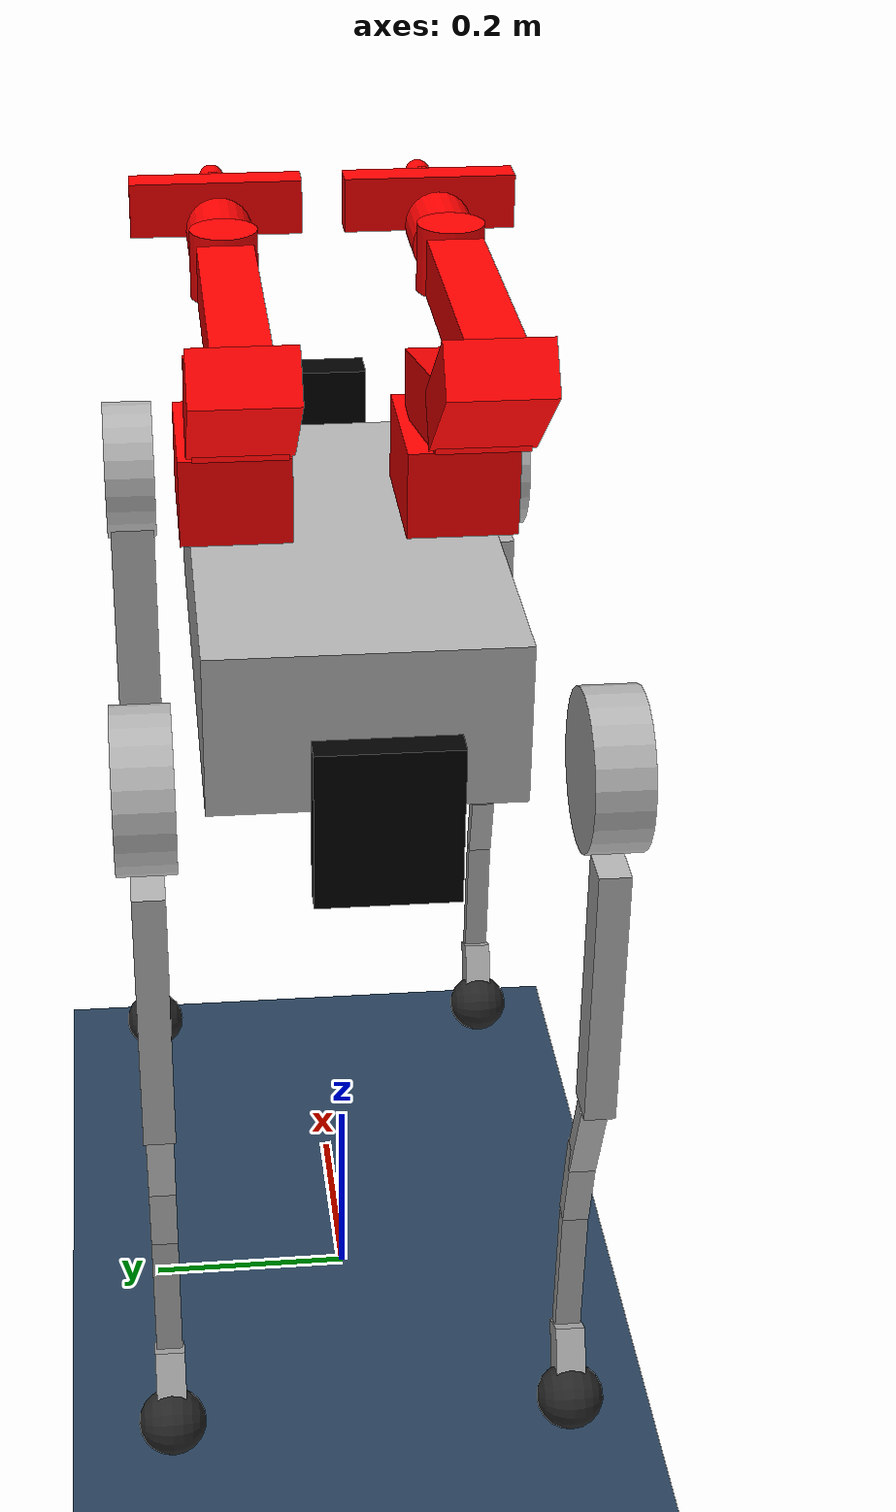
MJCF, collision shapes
<mujoco model="b2_dual_arm flat scene">
  <include file="b2_dual_arm.xml" />

  <statistic center="0 0 0.1" extent="0.8" meansize="0.04" />

  <visual>
    <headlight diffuse="0.6 0.6 0.6" ambient="0.3 0.3 0.3" specular="0 0 0" />
    <rgba haze="0.15 0.25 0.35 1" />
    <global azimuth="-130" elevation="-20" />
  </visual>

  <asset>
    <texture type="skybox" builtin="gradient" rgb1="0.3 0.5 0.7" rgb2="0 0 0" width="512" height="3072" />
    <texture type="2d" name="groundplane" builtin="checker" mark="edge" rgb1="0.2 0.3 0.4" rgb2="0.1 0.2 0.3" markrgb="0.8 0.8 0.8" width="300" height="300" />
    <material name="groundplane" texture="groundplane" texuniform="true" texrepeat="5 5" reflectance="0.2" />
  </asset>

  <worldbody>
    <light pos="0 0 1.5" dir="0 0 -1" directional="true" />
    <geom name="floor" size="0 0 0.05" type="plane" material="groundplane" />
  </worldbody>

  <sensor>
    <gyro site="imu" name="gyro" />
    <velocimeter site="imu" name="local_linvel" />
    <framezaxis objtype="site" objname="imu" name="upvector" />
    <framepos objtype="site" objname="imu" name="global_position" />
    <framelinvel objtype="site" objname="imu" name="global_linvel" />
    <frameangvel objtype="site" objname="imu" name="global_angvel" />

    <framepos objtype="site" objname="FL" name="FL_pos" />
    <framepos objtype="site" objname="FR" name="FR_pos" />
    <framepos objtype="site" objname="RL" name="RL_pos" />
    <framepos objtype="site" objname="RR" name="RR_pos" />

    <framelinvel objtype="site" objname="FL" name="FL_global_linvel" />
    <framelinvel objtype="site" objname="FR" name="FR_global_linvel" />
    <framelinvel objtype="site" objname="RL" name="RL_global_linvel" />
    <framelinvel objtype="site" objname="RR" name="RR_global_linvel" />

    <contact name="FL_foot_contact" geom1="floor" geom2="FL" data="found" num="1" reduce="mindist" />
    <contact name="FR_foot_contact" geom1="floor" geom2="FR" data="found" num="1" reduce="mindist" />
    <contact name="RL_foot_contact" geom1="floor" geom2="RL" data="found" num="1" reduce="mindist" />
    <contact name="RR_foot_contact" geom1="floor" geom2="RR" data="found" num="1" reduce="mindist" />
  </sensor>
</mujoco>

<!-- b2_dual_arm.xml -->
<mujoco model="b2_dual_arm">
  <compiler angle="radian" meshdir="assets" autolimits="true" />
  <default>
    <default class="b2">
      <geom type="mesh" />
      <joint damping="1" armature="0.1" />
      <default class="visual">
        <geom contype="0" conaffinity="0" group="2" />
      </default>
      <default class="collision">
        <geom group="3" mass="0" density="0" />
      </default>
      <site size="0.001" rgba="0.5 0.5 0.5 0.3" group="4" />
    </default>
    <default class="obj_visual">
      <geom group="2" type="mesh" contype="0" conaffinity="0" />
    </default>
    <default class="obj_collision">
      <geom group="3" contype="1" conaffinity="1" />
    </default>
    <default class="airbot_play">
      <joint axis="0 0 1" armature="0.01" damping="1" frictionloss="5" />
      <position inheritrange="1" kp="35" forcerange="-18 18" />
      <default class="joint1">
        <joint range="-3.1416 2.0944" actuatorfrcrange="-24 24" damping="0.2" frictionloss="1" />
      </default>
      <default class="joint2">
        <joint range="-2.9671 0.17453" actuatorfrcrange="-24 24" damping="0.2" frictionloss="1" />
      </default>
      <default class="joint3">
        <joint range="-0.087266 3.1416" actuatorfrcrange="-24 24" damping="0.2" frictionloss="1" />
      </default>
      <default class="joint4">
        <joint range="-3.0107 3.0107" actuatorfrcrange="-8 8" damping="0.1" frictionloss="0.5" />
        <position forcerange="-8 8" />
      </default>
      <default class="joint5">
        <joint range="-1.7628 1.7628" actuatorfrcrange="-8 8" damping="0.1" frictionloss="0.5" />
        <position forcerange="-8 8" />
      </default>
      <default class="joint6">
        <joint range="-3.0107 3.0107" actuatorfrcrange="-8 8" damping="0.1" frictionloss="0.5" />
        <position forcerange="-8 8" />
      </default>
    </default>
  </default>
  <asset>
    <mesh name="base_link" file="base_link.obj" />
    <mesh name="logo_left" file="logo_left.obj" />
    <mesh name="logo_right" file="logo_right.obj" />
    <mesh name="unitree_ladar" file="unitree_ladar.obj" />
    <mesh name="f_dc_link" file="f_dc_link.obj" />
    <mesh name="r_dc_link" file="r_dc_link.obj" />
    <mesh name="fake_imu_link" file="fake_imu_link.STL" />
    <mesh name="fake_head_Link" file="fake_head_Link.STL" />
    <mesh name="fake_tail_link" file="fake_tail_link.STL" />
    <mesh name="FL_hip" file="FL_hip.obj" />
    <mesh name="FL_thigh" file="FL_thigh.obj" />
    <mesh name="FL_thigh_protect" file="FL_thigh_protect.obj" />
    <mesh name="FL_calf" file="FL_calf.obj" />
    <mesh name="FL_foot" file="FL_foot.obj" />
    <mesh name="FR_hip" file="FR_hip.obj" />
    <mesh name="FR_thigh" file="FR_thigh.obj" />
    <mesh name="FR_thigh_protect" file="FR_thigh_protect.obj" />
    <mesh name="FR_calf" file="FR_calf.obj" />
    <mesh name="FR_foot" file="FR_foot.obj" />
    <mesh name="RL_hip" file="RL_hip.obj" />
    <mesh name="RL_thigh" file="RL_thigh.obj" />
    <mesh name="RL_thigh_protect" file="RL_thigh_protect.obj" />
    <mesh name="RL_calf" file="RL_calf.obj" />
    <mesh name="RL_foot" file="RL_foot.obj" />
    <mesh name="RR_hip" file="RR_hip.obj" />
    <mesh name="RR_thigh" file="RR_thigh.obj" />
    <mesh name="RR_thigh_protect" file="RR_thigh_protect.obj" />
    <mesh name="RR_calf" file="RR_calf.obj" />
    <mesh name="RR_foot" file="RR_foot.obj" />
    <mesh name="f_oc_link" file="f_oc_link.obj" />
    <mesh name="r_oc_link" file="r_oc_link.obj" />
    <material name="Paint_Matte_Black" specular="0.5" shininess="0.5" rgba="0.00111266039 0.00111266039 0.00111266039 1.0" />
    <material name="Paint_Metallic_White" specular="0.5" shininess="0.5" rgba="0.928523183 0.928523183 0.928523123 1.0" />
    <mesh name="link1" file="../../../go2_dual_arm/assets/link1.obj" />
    <mesh name="link2_0" file="../../../go2_dual_arm/assets/link2_0.obj" />
    <mesh name="link2_1" file="../../../go2_dual_arm/assets/link2_1.obj" />
    <mesh name="link3_0" file="../../../go2_dual_arm/assets/link3_0.obj" />
    <mesh name="link3_1" file="../../../go2_dual_arm/assets/link3_1.obj" />
    <mesh name="link4" file="../../../go2_dual_arm/assets/link4.obj" />
    <mesh name="link5_0" file="../../../go2_dual_arm/assets/link5_0.obj" />
    <mesh name="link5_1" file="../../../go2_dual_arm/assets/link5_1.obj" />
    <mesh name="link6" file="../../../go2_dual_arm/assets/link6.obj" />
    <mesh name="left" file="../../../go2_dual_arm/assets/left.obj" />
    <mesh name="right" file="../../../go2_dual_arm/assets/right.obj" />
    <mesh name="base_link_base_link" file="../../../go2_dual_arm/assets/new_base_link.STL" />
  </asset>
  <worldbody>
    <body name="base_link" pos="0 0 0.8" childclass="b2">
      <inertial pos="0.0212868 0.0045819 0.0106169" quat="0.00178111 0.675412 -0.000262894 0.737438" mass="40.8426" diaginertia="1.73786 1.66448 0.343734" />
      <joint name="floating_base_joint" type="free" />
      <geom type="mesh" contype="0" conaffinity="0" group="1" density="0" rgba="0.7 0.7 0.7 1" mesh="base_link" />
      <geom size="0.25 0.14 0.075" type="box" rgba="0.7 0.7 0.7 1" class="collision" />
      <geom type="mesh" contype="0" conaffinity="0" group="1" density="0" rgba="1 1 1 1" mesh="logo_left" />
      <geom type="mesh" contype="0" conaffinity="0" group="1" density="0" rgba="1 1 1 1" mesh="logo_right" />
      <geom pos="0.841724 -4.57659e-06 0.130379" quat="0.00244632 3.13845e-06 0.999997 1.29099e-06" type="mesh" contype="0" conaffinity="0" group="1" density="0" rgba="0 0 0 1" mesh="f_dc_link" />
      <geom pos="-0.378319 0.000200109 -0.379902" quat="-1.30076e-06 -0.708662 5.35065e-07 0.705548" type="mesh" contype="0" conaffinity="0" group="1" density="0" rgba="0 0 0 1" mesh="r_dc_link" />
      <geom pos="0 -0.02341 0.04927" type="mesh" contype="0" conaffinity="0" group="1" density="0" rgba="0 0 0 1" mesh="fake_imu_link" />
      <geom type="mesh" contype="0" conaffinity="0" group="1" density="0" rgba="0 0 0 1" mesh="fake_head_Link" />
      <geom size="0.02 0.06 0.07" pos="0.41 0 0.005" type="box" rgba="0 0 0 1" class="collision" />
      <geom type="mesh" contype="0" conaffinity="0" group="1" density="0" rgba="0 0 0 1" mesh="fake_tail_link" />
      <geom size="0.0125 0.06 0.07" pos="-0.405 0 0.005" type="box" rgba="0 0 0 1" class="collision" />
      <geom pos="0.84158 -0.0134347 -0.0134347" quat="-3.89602e-06 1.29867e-06 0.707107 -0.707107" type="mesh" contype="0" conaffinity="0" group="1" density="0" rgba="0 0 0 1" mesh="f_oc_link" />
      <geom pos="-0.00451008 0.0252504 -0.0262476" quat="0.707107 -0.707107 -1.29867e-06 -1.29867e-06" type="mesh" contype="0" conaffinity="0" group="1" density="0" rgba="0 0 0 1" mesh="r_oc_link" />
      <site name="imu" pos="0 -0.02341 0.04927" />
      <body name="FL_hip" pos="0.3285 0.072 0">
        <inertial pos="-0.00829923 -0.00998502 0.000235465" quat="0.525168 0.518964 0.477213 0.476595" mass="2.5294" diaginertia="0.00485541 0.00370618 0.00277182" />
        <joint name="FL_hip_joint" pos="0 0 0" axis="1 0 0" range="-0.87 0.87" />
        <geom type="mesh" contype="0" conaffinity="0" group="1" density="0" rgba="0.7 0.7 0.7 1" mesh="FL_hip" />
        <geom size="0.07 0.025" pos="0 0.12 0" quat="0.707107 0.707107 0 0" type="cylinder" rgba="0.7 0.7 0.7 1" class="collision" />
        <body name="FL_thigh" pos="0 0.11973 0">
          <inertial pos="-0.00418663 -0.0366068 -0.0432737" quat="0.884916 0.0880602 -0.00896728 0.457262" mass="7.4554" diaginertia="0.085057 0.0842843 0.0112538" />
          <joint name="FL_thigh_joint" pos="0 0 0" axis="0 1 0" range="-0.94 4.69" />
          <geom type="mesh" contype="0" conaffinity="0" group="1" density="0" rgba="0.7 0.7 0.7 1" mesh="FL_thigh" />
          <geom size="0.16 0.02225 0.027" pos="-0.025 0 -0.16" quat="0.707388 0 0.706825 0" type="box" rgba="0.7 0.7 0.7 1" class="collision" />
          <geom type="mesh" contype="0" conaffinity="0" group="1" density="0" rgba="0.65 0.68 0.65 1" mesh="FL_thigh_protect" />
          <body name="FL_calf" pos="0 -8.6984e-05 -0.35">
            <inertial pos="0.0096848 1.25758e-05 -0.158987" quat="0.70753 -0.00625821 -0.00634277 0.706627" mass="0.679123" diaginertia="0.0162494 0.0161173 0.000398115" />
            <joint name="FL_calf_joint" pos="0 0 0" axis="0 1 0" range="-2.82 -0.43" />
            <geom type="mesh" contype="0" conaffinity="0" group="1" density="0" rgba="0.7 0.7 0.7 1" mesh="FL_calf" />
            <geom size="0.05 0.01225 0.009" pos="-0.002 0 -0.03" quat="0.825336 0 0.564642 0" type="box" rgba="0.7 0.7 0.7 1" class="collision" />
            <geom size="0.05 0.01225 0.009" pos="0.022 0 -0.1" quat="0.780707 0 0.624897 0" type="box" rgba="0.7 0.7 0.7 1" class="collision" />
            <geom size="0.075 0.01225 0.0075" pos="0.036 0 -0.225" quat="0.721382 0 0.692537 0" type="box" rgba="0.7 0.7 0.7 1" class="collision" />
            <geom size="0.025 0.014 0.0175" pos="0.023 0 -0.31" quat="0.540302 0 0.841471 0" type="box" rgba="0.7 0.7 0.7 1" class="collision" />
            <geom pos="0 8.6986e-05 0" type="mesh" contype="0" conaffinity="0" group="1" density="0" rgba="0.15 0.15 0.15 1" mesh="FL_foot" friction="0.4 0.005 0.0001" />
            <geom name="FL" size="0.032" pos="0 8.6986e-05 -0.35" quat="0.707388 0.706825 0 0" type="sphere" rgba="0.15 0.15 0.15 1" class="collision" friction="0.4 0.005 0.0001" />
            <site name="FL" pos="0 8.6986e-05 -0.35" size="0.01" type="sphere" rgba="0 1 0 1" />
          </body>
        </body>
      </body>
      <body name="FR_hip" pos="0.3285 -0.072 0">
        <inertial pos="-0.00829923 0.00998502 0.000235465" quat="0.476595 0.477213 0.518964 0.525168" mass="2.5294" diaginertia="0.00485541 0.00370618 0.00277182" />
        <joint name="FR_hip_joint" pos="0 0 0" axis="1 0 0" range="-0.87 0.87" />
        <geom type="mesh" contype="0" conaffinity="0" group="1" density="0" rgba="0.7 0.7 0.7 1" mesh="FR_hip" />
        <geom size="0.07 0.025" pos="0 -0.12 0" quat="0.707107 0.707107 0 0" type="cylinder" rgba="0.7 0.7 0.7 1" class="collision" />
        <body name="FR_thigh" pos="0 -0.11973 0">
          <inertial pos="-0.00418663 0.0366068 -0.0432737" quat="0.457262 -0.00896728 0.0880602 0.884916" mass="7.4554" diaginertia="0.085057 0.0842843 0.0112538" />
          <joint name="FR_thigh_joint" pos="0 0 0" axis="0 1 0" range="-0.94 4.69" />
          <geom type="mesh" contype="0" conaffinity="0" group="1" density="0" rgba="0.7 0.7 0.7 1" mesh="FR_thigh" />
          <geom size="0.125 0.014 0.02" pos="-0.03 0 -0.2" quat="0.707388 0 0.706825 0" type="box" rgba="0.7 0.7 0.7 1" class="collision" />
          <geom type="mesh" contype="0" conaffinity="0" group="1" density="0" rgba="0.65 0.68 0.65 1" mesh="FR_thigh_protect" />
          <body name="FR_calf" pos="0 8.6986e-05 -0.35">
            <inertial pos="0.0096848 0 -0.158987" quat="0.707079 -0.00630052 -0.00630052 0.707079" mass="0.679123" diaginertia="0.0162494 0.0161173 0.000398115" />
            <joint name="FR_calf_joint" pos="0 0 0" axis="0 1 0" range="-2.82 -0.43" />
            <geom type="mesh" contype="0" conaffinity="0" group="1" density="0" rgba="0.7 0.7 0.7 1" mesh="FR_calf" />
            <geom size="0.05 0.01225 0.009" pos="-0.002 0 -0.03" quat="0.825336 0 0.564642 0" type="box" rgba="0.7 0.7 0.7 1" class="collision" />
            <geom size="0.05 0.01225 0.009" pos="0.022 0 -0.1" quat="0.780707 0 0.624897 0" type="box" rgba="0.7 0.7 0.7 1" class="collision" />
            <geom size="0.075 0.01225 0.0075" pos="0.036 0 -0.225" quat="0.721382 0 0.692537 0" type="box" rgba="0.7 0.7 0.7 1" class="collision" />
            <geom size="0.025 0.014 0.0175" pos="0.023 0 -0.31" quat="0.540302 0 0.841471 0" type="box" rgba="0.7 0.7 0.7 1" class="collision" />
            <geom type="mesh" contype="0" conaffinity="0" group="1" density="0" rgba="0.15 0.15 0.15 1" mesh="FR_foot" friction="0.4 0.005 0.0001" />
            <geom name="FR" size="0.032" pos="0 8.6986e-05 -0.35" quat="0.707388 0.706825 0 0" type="sphere" rgba="0.15 0.15 0.15 1" class="collision" friction="0.4 0.005 0.0001" />
            <site name="FR" pos="0 8.6986e-05 -0.35" size="0.01" type="sphere" rgba="0 1 0 1" />
          </body>
        </body>
      </body>
      <body name="RL_hip" pos="-0.3285 0.072 0">
        <inertial pos="0.00829923 -0.00998502 0.000235465" quat="0.477213 0.476595 0.525168 0.518964" mass="2.5294" diaginertia="0.00485541 0.00370618 0.00277182" />
        <joint name="RL_hip_joint" pos="0 0 0" axis="1 0 0" range="-0.87 0.87" />
        <geom type="mesh" contype="0" conaffinity="0" group="1" density="0" rgba="0.7 0.7 0.7 1" mesh="RL_hip" />
        <geom size="0.07 0.025" pos="0 0.12 0" quat="0.707107 0.707107 0 0" type="cylinder" rgba="0.7 0.7 0.7 1" class="collision" />
        <body name="RL_thigh" pos="0 0.11973 0">
          <inertial pos="-0.00418663 -0.0366068 -0.0432737" quat="0.884916 0.0880602 -0.00896728 0.457262" mass="7.4554" diaginertia="0.085057 0.0842843 0.0112538" />
          <joint name="RL_thigh_joint" pos="0 0 0" axis="0 1 0" range="-0.94 4.69" />
          <geom type="mesh" contype="0" conaffinity="0" group="1" density="0" rgba="0.7 0.7 0.7 1" mesh="RL_thigh" />
          <geom size="0.125 0.014 0.02" pos="-0.03 0 -0.2" quat="0.707388 0 0.706825 0" type="box" rgba="0.7 0.7 0.7 1" class="collision" />
          <geom type="mesh" contype="0" conaffinity="0" group="1" density="0" rgba="0.65 0.68 0.65 1" mesh="RL_thigh_protect" />
          <body name="RL_calf" pos="0 -8.6984e-05 -0.35">
            <inertial pos="0.0096848 1.25758e-05 -0.158987" quat="0.70753 -0.00625821 -0.00634277 0.706627" mass="0.679123" diaginertia="0.0162494 0.0161173 0.000398115" />
            <joint name="RL_calf_joint" pos="0 0 0" axis="0 1 0" range="-2.82 -0.43" />
            <geom type="mesh" contype="0" conaffinity="0" group="1" density="0" rgba="0.7 0.7 0.7 1" mesh="RL_calf" />
            <geom size="0.05 0.01225 0.009" pos="-0.002 0 -0.03" quat="0.825336 0 0.564642 0" type="box" rgba="0.7 0.7 0.7 1" class="collision" />
            <geom size="0.05 0.01225 0.009" pos="0.022 0 -0.1" quat="0.780707 0 0.624897 0" type="box" rgba="0.7 0.7 0.7 1" class="collision" />
            <geom size="0.075 0.01225 0.0075" pos="0.036 0 -0.225" quat="0.721382 0 0.692537 0" type="box" rgba="0.7 0.7 0.7 1" class="collision" />
            <geom size="0.025 0.014 0.0175" pos="0.023 0 -0.31" quat="0.540302 0 0.841471 0" type="box" rgba="0.7 0.7 0.7 1" class="collision" />
            <geom pos="0 8.6986e-05 0" type="mesh" contype="0" conaffinity="0" group="1" density="0" rgba="0.15 0.15 0.15 1" mesh="RL_foot" friction="0.4 0.005 0.0001" />
            <geom name="RL" size="0.032" pos="0 8.6986e-05 -0.35" quat="0.707388 0.706825 0 0" type="sphere" rgba="0.15 0.15 0.15 1" class="collision" friction="0.4 0.005 0.0001" />
            <site name="RL" pos="0 8.6986e-05 -0.35" size="0.01" type="sphere" rgba="0 1 0 1" />
          </body>
        </body>
      </body>
      <body name="RR_hip" pos="-0.3285 -0.072 0">
        <inertial pos="0.00829923 -0.00825992 0.000235465" quat="0.524846 0.53164 0.469132 0.470967" mass="2.5294" diaginertia="0.0048658 0.00378576 0.00284106" />
        <joint name="RR_hip_joint" pos="0 0 0" axis="1 0 0" range="-0.87 0.87" />
        <geom type="mesh" contype="0" conaffinity="0" group="1" density="0" rgba="0.7 0.7 0.7 1" mesh="RR_hip" />
        <geom size="0.07 0.025" pos="0 -0.12 0" quat="0.707107 0.707107 0 0" type="cylinder" rgba="0.7 0.7 0.7 1" class="collision" />
        <body name="RR_thigh" pos="0 -0.11973 0">
          <inertial pos="-0.00418663 0.0366068 -0.0432737" quat="0.457262 -0.00896728 0.0880602 0.884916" mass="7.4554" diaginertia="0.085057 0.0842843 0.0112538" />
          <joint name="RR_thigh_joint" pos="0 0 0" axis="0 1 0" range="-0.94 4.69" />
          <geom type="mesh" contype="0" conaffinity="0" group="1" density="0" rgba="0.7 0.7 0.7 1" mesh="RR_thigh" />
          <geom size="0.125 0.014 0.02" pos="-0.03 0 -0.2" quat="0.707388 0 0.706825 0" type="box" rgba="0.7 0.7 0.7 1" class="collision" />
          <geom type="mesh" contype="0" conaffinity="0" group="1" density="0" rgba="0.65 0.68 0.65 1" mesh="RR_thigh_protect" />
          <body name="RR_calf" pos="0 8.6986e-05 -0.35">
            <inertial pos="0.0096848 -1.25756e-05 -0.158987" quat="0.706627 -0.00634277 -0.00625821 0.70753" mass="0.679123" diaginertia="0.0162494 0.0161173 0.000398115" />
            <joint name="RR_calf_joint" pos="0 0 0" axis="0 1 0" range="-2.82 -0.43" />
            <geom type="mesh" contype="0" conaffinity="0" group="1" density="0" rgba="0.7 0.7 0.7 1" mesh="RR_calf" />
            <geom size="0.05 0.01225 0.009" pos="-0.002 0 -0.03" quat="0.825336 0 0.564642 0" type="box" rgba="0.7 0.7 0.7 1" class="collision" />
            <geom size="0.05 0.01225 0.009" pos="0.022 0 -0.1" quat="0.780707 0 0.624897 0" type="box" rgba="0.7 0.7 0.7 1" class="collision" />
            <geom size="0.075 0.01225 0.0075" pos="0.036 0 -0.225" quat="0.721382 0 0.692537 0" type="box" rgba="0.7 0.7 0.7 1" class="collision" />
            <geom size="0.025 0.014 0.0175" pos="0.023 0 -0.31" quat="0.540302 0 0.841471 0" type="box" rgba="0.7 0.7 0.7 1" class="collision" />
            <geom pos="0 -8.6984e-05 0" type="mesh" contype="0" conaffinity="0" group="1" density="0" rgba="0.15 0.15 0.15 1" mesh="RR_foot" friction="0.4 0.005 0.0001" />
            <geom name="RR" size="0.032" pos="0 8.6986e-05 -0.35" quat="0.707388 0.706825 0 0" type="sphere" rgba="0.15 0.15 0.15 1" class="collision" friction="0.4 0.005 0.0001" />
            <site name="RR" pos="0 8.6986e-05 -0.35" size="0.01" type="sphere" rgba="0 1 0 1" />
          </body>
        </body>
      </body>
      <body name="left_arm_base_on_go2" pos="0.0045 0.10 0.0945">
        <body name="left_arm_base" childclass="airbot_play">
          <site name="left_armbasepoint" pos="0 0 0" euler="0 0 0" size="0.01" type="sphere" rgba="1 0 0 1" />
          <inertial pos="-0.0262913514073823 -0.0151414731978384 0.0260741549397302" mass="0.735520547128483" diaginertia="0.000798907222818606 0.000995609340418481 0.001483737681037" />
          <geom name="left_base_link_collision" type="box" pos="-0.015 0 0.045" size="0.07 0.05 0.04" rgba="1 0 0 0.5" class="obj_collision" />
          <geom name="left_base_link_visual" type="mesh" mesh="base_link_base_link" material="Paint_Matte_Black" class="obj_visual" />
          <site name="left_touch_site_base" pos="-0.015 0 0.045" size="0.001" type="sphere" group="3" />
          <body name="left_link1" pos="0 0 0.1172">
            <inertial pos="7.9126e-05 -0.002527 -0.0041359" quat="0.696716 0.716558 0.0238919 -0.0236876" mass="0.54639" diaginertia="0.000346294 0.000325437 0.000286269" />
            <joint name="left_joint1" class="joint1" />
            <geom name="left_link1_visual" type="mesh" mesh="link1" material="Paint_Matte_Black" class="obj_visual" />
            <site name="left_touch_site_link1" pos="0 0 0" size="0.001" type="sphere" group="3" />
            <body name="left_link2" quat="0.135866 0.135867 -0.69393 0.693932">
              <inertial pos="0.22493 0.0047721 0.008023" quat="-0.210875 0.632473 -0.273056 0.693506" mass="0.64621" diaginertia="0.00516535 0.00505042 0.000418626" />
              <joint name="left_joint2" class="joint2" />
              <geom name="left_link2_collision1" type="box" pos="0.08 0.015 0" euler="0 0 0.15" size="0.11 0.03 0.04" rgba="1 0 0 0.5" class="obj_collision" />
              <geom name="left_link2_collision2" type="box" pos="0.235 0.015 0" euler="0 0 -0.3" size="0.065 0.025 0.045" rgba="1 0 0 0.5" class="obj_collision" />
              <geom name="left_link2_0_visual" type="mesh" mesh="link2_0" material="Paint_Matte_Black" class="obj_visual" />
              <geom name="left_link2_1_visual" type="mesh" mesh="link2_1" material="Paint_Metallic_White" class="obj_visual" />
              <site name="left_touch_site_link2" pos="0.15 0 0" size="0.001" type="sphere" group="3" />
              <body name="left_link3" pos="0.27009 0 0" quat="0.192144 0 0 -0.981367">
                <inertial pos="0.16813 -5.5576e-05 0.0031184" quat="0.511278 0.488423 0.489191 0.510617" mass="0.26829" diaginertia="0.0031527 0.0030951 0.000239403" />
                <joint name="left_joint3" class="joint3" />
                <geom name="left_link3_collision" type="box" pos="0.13 0 0" size="0.13 0.025 0.025" rgba="1 0 0 0.5" class="obj_collision" />
                <geom name="left_link3_0_visual" type="mesh" mesh="link3_0" material="Paint_Matte_Black" class="obj_visual" />
                <geom name="left_link3_1_visual" type="mesh" mesh="link3_1" material="Paint_Metallic_White" class="obj_visual" />
                <site name="left_touch_site_link3" pos="0.13 0 0" size="0.001" type="sphere" group="3" />
                <body name="left_link4" pos="0.29015 0 0" quat="-2.59734e-06 0.707105 2.59735e-06 0.707108">
                  <inertial pos="5.2436e-06 0.00040412 -0.03228" quat="0.999969 -0.000174762 -0.00792041 -6.98144e-05" mass="0.34876" diaginertia="0.000423574 0.000412 0.000126826" />
                  <joint name="left_joint4" class="joint4" />
                  <geom name="left_link4_visual" type="mesh" mesh="link4" material="Paint_Matte_Black" class="obj_visual" />
                  <geom name="left_link4_collision" type="cylinder" pos="0 0 0" euler="1.5708 0 0" size="0.03 0.03" rgba="1 0 0 0.5" class="obj_collision" />
                  <site name="left_touch_site_link4" pos="0 0 0" size="0.001" type="sphere" group="3" />
                  <body name="left_link5" quat="0.707105 0.707108 0 0">
                    <inertial pos="8.3328e-06 0.026148 0.002525" quat="0.531568 0.4663 0.4663 0.531568" mass="0.36132" diaginertia="0.0004677 0.000432922 0.000178178" />
                    <joint name="left_joint5" class="joint5" />
                    <geom name="left_link5_0_visual" type="mesh" mesh="link5_0" material="Paint_Matte_Black" class="obj_visual" />
                    <geom name="left_link5_1_visual" type="mesh" mesh="link5_1" material="Paint_Metallic_White" class="obj_visual" />
                    <geom name="left_link5_collision" type="cylinder" pos="0 0.06 0" euler="1.5708 0 0" size="0.03 0.03" rgba="1 0 0 0.5" class="obj_collision" />
                    <site name="left_touch_site_link5" pos="0 0.06 0" size="0.001" type="sphere" group="3" />
                    <body name="left_link6" pos="0 0.23645 0" quat="0.499998 -0.5 0.5 0.500002">
                      <body pos="-0.105 0 -0.12" euler="3.1416 0 1.5708">
                        <camera name="left_eye_arm" mode="fixed" euler="-0.5236 0 0" fovy="72.5376526571421" />
                      </body>
                      <inertial pos="-0.0047053 7.3857e-05 -0.12293" mass="0.53855" diaginertia="5e-05 5e-05 3.85e-05" />
                      <joint name="left_joint6" class="joint6" />
                      <geom name="left_link6_collision" type="box" pos="0 0 -0.07" size="0.025 0.08 0.015" rgba="1 0 0 0.5" class="obj_collision" />
                      <geom name="left_link6_visual" type="mesh" mesh="link6" material="Paint_Matte_Black" class="obj_visual" />
                      <site name="left_endpoint" pos="0 0 0.015" euler="0 -1.5708 0" size="0.01" type="sphere" rgba="0 1 0 1" />
                      <site name="left_touch_site_link6" pos="0 0 -0.07" size="0.001" type="sphere" group="3" />
                      <body name="left_eef_connect_base_link">
                        <geom name="left_eef_collision" type="sphere" size=".012" pos="0 0 0.015" rgba="1 0 0 0.5" class="obj_collision" />
                        <site name="left_touch_site_eef" pos="0 0 0.015" size="0.001" type="sphere" group="3" />
                        <body name="left_g2_base_link">
                          <geom name="left_g2_base_link_collision" type="box" pos="0 0 -0.07" size="0.025 0.08 0.015" rgba="1 0 0 0.5" class="obj_collision" />
                          <site name="left_touch_site_g2base" pos="0 0 -0.07" size="0.001" type="sphere" group="3" />
                          <body name="left_g2_left_link">
                            <inertial pos="-0.048742 0.0096369 0.00044322" quat="0.757393 0.0415116 0.0313705 0.650883" mass="0.0626" diaginertia="2.79281e-05 1.90181e-05 1.21737e-05" />
                            <geom name="left_g2_left_link_visual" type="mesh" mesh="right" material="Paint_Matte_Black" class="obj_visual" />
                            <geom name="left_g2_left_finger_pad" type="box" size=".00525 .002 .02" pos="0 0.002 0.005" rgba="1 0 0 0.5" class="obj_collision" />
                            <geom name="left_g2_left_finger_collision" type="box" size=".015 .002 .018" pos="0 0.002 -0.035" rgba="1 0 0 0.5" class="obj_collision" />
                          </body>
                          <body name="left_g2_right_link">
                            <inertial pos="-0.049039 -0.0096764 0.00038868" quat="0.650491 0.0296695 0.0398251 0.757889" mass="0.061803" diaginertia="2.74809e-05 1.88104e-05 1.19127e-05" />
                            <geom name="left_g2_right_link_visual" type="mesh" mesh="left" material="Paint_Matte_Black" class="obj_visual" />
                            <geom name="left_g2_right_finger_pad" type="box" size=".00525 .002 .02" pos="0 -0.002 0.005" rgba="1 0 0 0.5" class="obj_collision" />
                            <geom name="left_g2_right_finger_collision" type="box" size=".015 .002 .018" pos="0 -0.002 -0.035" rgba="1 0 0 0.5" class="obj_collision" />
                          </body>
                        </body>
                      </body>
                    </body>
                  </body>
                </body>
              </body>
            </body>
          </body>
        </body>
      </body>
      <body name="right_arm_base_on_go2" pos="0.0045 -0.10 0.0945">
        <body name="right_arm_base" childclass="airbot_play">
          <site name="right_armbasepoint" pos="0 0 0" euler="0 0 0" size="0.01" type="sphere" rgba="1 0 0 1" />
          <inertial pos="-0.0262913514073823 -0.0151414731978384 0.0260741549397302" mass="0.735520547128483" diaginertia="0.000798907222818606 0.000995609340418481 0.001483737681037" />
          <geom name="right_base_link_collision" type="box" pos="-0.015 0 0.045" size="0.07 0.05 0.04" rgba="1 0 0 0.5" class="obj_collision" />
          <geom name="right_base_link_visual" type="mesh" mesh="base_link_base_link" material="Paint_Matte_Black" class="obj_visual" />
          <site name="right_touch_site_base" pos="-0.015 0 0.045" size="0.001" type="sphere" group="3" />
          <body name="right_link1" pos="0 0 0.1172">
            <inertial pos="7.9126e-05 -0.002527 -0.0041359" quat="0.696716 0.716558 0.0238919 -0.0236876" mass="0.54639" diaginertia="0.000346294 0.000325437 0.000286269" />
            <joint name="right_joint1" class="joint1" />
            <geom name="right_link1_visual" type="mesh" mesh="link1" material="Paint_Matte_Black" class="obj_visual" />
            <site name="right_touch_site_link1" pos="0 0 0" size="0.001" type="sphere" group="3" />
            <body name="right_link2" quat="0.135866 0.135867 -0.69393 0.693932">
              <inertial pos="0.22493 0.0047721 0.008023" quat="-0.210875 0.632473 -0.273056 0.693506" mass="0.64621" diaginertia="0.00516535 0.00505042 0.000418626" />
              <joint name="right_joint2" class="joint2" />
              <geom name="right_link2_collision1" type="box" pos="0.08 0.015 0" euler="0 0 0.15" size="0.11 0.03 0.04" rgba="1 0 0 0.5" class="obj_collision" />
              <geom name="right_link2_collision2" type="box" pos="0.235 0.015 0" euler="0 0 -0.3" size="0.065 0.025 0.045" rgba="1 0 0 0.5" class="obj_collision" />
              <geom name="right_link2_0_visual" type="mesh" mesh="link2_0" material="Paint_Matte_Black" class="obj_visual" />
              <geom name="right_link2_1_visual" type="mesh" mesh="link2_1" material="Paint_Metallic_White" class="obj_visual" />
              <site name="right_touch_site_link2" pos="0.15 0 0" size="0.001" type="sphere" group="3" />
              <body name="right_link3" pos="0.27009 0 0" quat="0.192144 0 0 -0.981367">
                <inertial pos="0.16813 -5.5576e-05 0.0031184" quat="0.511278 0.488423 0.489191 0.510617" mass="0.26829" diaginertia="0.0031527 0.0030951 0.000239403" />
                <joint name="right_joint3" class="joint3" />
                <geom name="right_link3_collision" type="box" pos="0.13 0 0" size="0.13 0.025 0.025" rgba="1 0 0 0.5" class="obj_collision" />
                <geom name="right_link3_0_visual" type="mesh" mesh="link3_0" material="Paint_Matte_Black" class="obj_visual" />
                <geom name="right_link3_1_visual" type="mesh" mesh="link3_1" material="Paint_Metallic_White" class="obj_visual" />
                <site name="right_touch_site_link3" pos="0.13 0 0" size="0.001" type="sphere" group="3" />
                <body name="right_link4" pos="0.29015 0 0" quat="-2.59734e-06 0.707105 2.59735e-06 0.707108">
                  <inertial pos="5.2436e-06 0.00040412 -0.03228" quat="0.999969 -0.000174762 -0.00792041 -6.98144e-05" mass="0.34876" diaginertia="0.000423574 0.000412 0.000126826" />
                  <joint name="right_joint4" class="joint4" />
                  <geom name="right_link4_visual" type="mesh" mesh="link4" material="Paint_Matte_Black" class="obj_visual" />
                  <geom name="right_link4_collision" type="cylinder" pos="0 0 0" euler="1.5708 0 0" size="0.03 0.03" rgba="1 0 0 0.5" class="obj_collision" />
                  <site name="right_touch_site_link4" pos="0 0 0" size="0.001" type="sphere" group="3" />
                  <body name="right_link5" quat="0.707105 0.707108 0 0">
                    <inertial pos="8.3328e-06 0.026148 0.002525" quat="0.531568 0.4663 0.4663 0.531568" mass="0.36132" diaginertia="0.0004677 0.000432922 0.000178178" />
                    <joint name="right_joint5" class="joint5" />
                    <geom name="right_link5_0_visual" type="mesh" mesh="link5_0" material="Paint_Matte_Black" class="obj_visual" />
                    <geom name="right_link5_1_visual" type="mesh" mesh="link5_1" material="Paint_Metallic_White" class="obj_visual" />
                    <geom name="right_link5_collision" type="cylinder" pos="0 0.06 0" euler="1.5708 0 0" size="0.03 0.03" rgba="1 0 0 0.5" class="obj_collision" />
                    <site name="right_touch_site_link5" pos="0 0.06 0" size="0.001" type="sphere" group="3" />
                    <body name="right_link6" pos="0 0.23645 0" quat="0.499998 -0.5 0.5 0.500002">
                      <body pos="-0.105 0 -0.12" euler="3.1416 0 1.5708">
                        <camera name="right_eye_arm" mode="fixed" euler="-0.5236 0 0" fovy="72.5376526571421" />
                      </body>
                      <inertial pos="-0.0047053 7.3857e-05 -0.12293" mass="0.53855" diaginertia="5e-05 5e-05 3.85e-05" />
                      <joint name="right_joint6" class="joint6" />
                      <geom name="right_link6_collision" type="box" pos="0 0 -0.07" size="0.025 0.08 0.015" rgba="1 0 0 0.5" class="obj_collision" />
                      <geom name="right_link6_visual" type="mesh" mesh="link6" material="Paint_Matte_Black" class="obj_visual" />
                      <site name="right_endpoint" pos="0 0 0.015" euler="0 -1.5708 0" size="0.01" type="sphere" rgba="0 1 0 1" />
                      <site name="right_touch_site_link6" pos="0 0 -0.07" size="0.001" type="sphere" group="3" />
                      <body name="right_eef_connect_base_link">
                        <geom name="right_eef_collision" type="sphere" size=".012" pos="0 0 0.015" rgba="1 0 0 0.5" class="obj_collision" />
                        <site name="right_touch_site_eef" pos="0 0 0.015" size="0.001" type="sphere" group="3" />
                        <body name="right_g2_base_link">
                          <geom name="right_g2_base_link_collision" type="box" pos="0 0 -0.07" size="0.025 0.08 0.015" rgba="1 0 0 0.5" class="obj_collision" />
                          <site name="right_touch_site_g2base" pos="0 0 -0.07" size="0.001" type="sphere" group="3" />
                          <body name="right_g2_left_link">
                            <inertial pos="-0.048742 0.0096369 0.00044322" quat="0.757393 0.0415116 0.0313705 0.650883" mass="0.0626" diaginertia="2.79281e-05 1.90181e-05 1.21737e-05" />
                            <geom name="right_g2_left_link_visual" type="mesh" mesh="right" material="Paint_Matte_Black" class="obj_visual" />
                            <geom name="right_g2_left_finger_pad" type="box" size=".00525 .002 .02" pos="0 0.002 0.005" rgba="1 0 0 0.5" class="obj_collision" />
                            <geom name="right_g2_left_finger_collision" type="box" size=".015 .002 .018" pos="0 0.002 -0.035" rgba="1 0 0 0.5" class="obj_collision" />
                          </body>
                          <body name="right_g2_right_link">
                            <inertial pos="-0.049039 -0.0096764 0.00038868" quat="0.650491 0.0296695 0.0398251 0.757889" mass="0.061803" diaginertia="2.74809e-05 1.88104e-05 1.19127e-05" />
                            <geom name="right_g2_right_link_visual" type="mesh" mesh="left" material="Paint_Matte_Black" class="obj_visual" />
                            <geom name="right_g2_right_finger_pad" type="box" size=".00525 .002 .02" pos="0 -0.002 0.005" rgba="1 0 0 0.5" class="obj_collision" />
                            <geom name="right_g2_right_finger_collision" type="box" size=".015 .002 .018" pos="0 -0.002 -0.035" rgba="1 0 0 0.5" class="obj_collision" />
                          </body>
                        </body>
                      </body>
                    </body>
                  </body>
                </body>
              </body>
            </body>
          </body>
        </body>
      </body>
    </body>
  </worldbody>
  <contact>
    <exclude body1="left_arm_base" body2="left_link2" />
    <exclude body1="right_arm_base" body2="right_link2" />
    <exclude body1="left_arm_base" body2="left_link1" />
    <exclude body1="right_arm_base" body2="right_link1" />
    <exclude body1="left_link1" body2="left_link2" />
    <exclude body1="right_link1" body2="right_link2" />
    <exclude body1="left_link2" body2="left_link3" />
    <exclude body1="right_link2" body2="right_link3" />
    <exclude body1="left_link3" body2="left_link4" />
    <exclude body1="right_link3" body2="right_link4" />
    <exclude body1="left_link4" body2="left_link5" />
    <exclude body1="right_link4" body2="right_link5" />
    <exclude body1="left_link5" body2="left_link6" />
    <exclude body1="right_link5" body2="right_link6" />
    <exclude body1="left_link6" body2="left_eef_connect_base_link" />
    <exclude body1="right_link6" body2="right_eef_connect_base_link" />
    <exclude body1="left_eef_connect_base_link" body2="left_g2_base_link" />
    <exclude body1="right_eef_connect_base_link" body2="right_g2_base_link" />
    <exclude body1="left_g2_base_link" body2="left_g2_left_link" />
    <exclude body1="right_g2_base_link" body2="right_g2_left_link" />
    <exclude body1="left_g2_base_link" body2="left_g2_right_link" />
    <exclude body1="right_g2_base_link" body2="right_g2_right_link" />
  </contact>
  <actuator>
    <position class="b2" name="FL_hip" joint="FL_hip_joint" ctrllimited="true" ctrlrange="-0.87 0.87" />
    <position class="b2" name="FL_thigh" joint="FL_thigh_joint" ctrllimited="true" ctrlrange="-0.94 4.69" />
    <position class="b2" name="FL_calf" joint="FL_calf_joint" ctrllimited="true" ctrlrange="-2.82 -0.43" />
    <position class="b2" name="FR_hip" joint="FR_hip_joint" ctrllimited="true" ctrlrange="-0.87 0.87" />
    <position class="b2" name="FR_thigh" joint="FR_thigh_joint" ctrllimited="true" ctrlrange="-0.94 4.69" />
    <position class="b2" name="FR_calf" joint="FR_calf_joint" ctrllimited="true" ctrlrange="-2.82 -0.43" />
    <position class="b2" name="RL_hip" joint="RL_hip_joint" ctrllimited="true" ctrlrange="-0.87 0.87" />
    <position class="b2" name="RL_thigh" joint="RL_thigh_joint" ctrllimited="true" ctrlrange="-0.94 4.69" />
    <position class="b2" name="RL_calf" joint="RL_calf_joint" ctrllimited="true" ctrlrange="-2.82 -0.43" />
    <position class="b2" name="RR_hip" joint="RR_hip_joint" ctrllimited="true" ctrlrange="-0.87 0.87" />
    <position class="b2" name="RR_thigh" joint="RR_thigh_joint" ctrllimited="true" ctrlrange="-0.94 4.69" />
    <position class="b2" name="RR_calf" joint="RR_calf_joint" ctrllimited="true" ctrlrange="-2.82 -0.43" />
    <position joint="left_joint1" class="joint1" forcerange="-24 24" forcelimited="true" ctrllimited="true" name="left_joint1_control" />
    <position joint="left_joint2" class="joint2" forcerange="-24 24" forcelimited="true" ctrllimited="true" name="left_joint2_control" />
    <position joint="left_joint3" class="joint3" forcerange="-24 24" forcelimited="true" ctrllimited="true" name="left_joint3_control" />
    <position joint="left_joint4" class="joint4" forcerange="-8 8" forcelimited="true" ctrllimited="true" name="left_joint4_control" />
    <position joint="left_joint5" class="joint5" forcerange="-8 8" forcelimited="true" ctrllimited="true" name="left_joint5_control" />
    <position joint="left_joint6" class="joint6" forcerange="-8 8" forcelimited="true" ctrllimited="true" name="left_joint6_control" />
    <position joint="right_joint1" class="joint1" forcerange="-24 24" forcelimited="true" ctrllimited="true" name="right_joint1_control" />
    <position joint="right_joint2" class="joint2" forcerange="-24 24" forcelimited="true" ctrllimited="true" name="right_joint2_control" />
    <position joint="right_joint3" class="joint3" forcerange="-24 24" forcelimited="true" ctrllimited="true" name="right_joint3_control" />
    <position joint="right_joint4" class="joint4" forcerange="-8 8" forcelimited="true" ctrllimited="true" name="right_joint4_control" />
    <position joint="right_joint5" class="joint5" forcerange="-8 8" forcelimited="true" ctrllimited="true" name="right_joint5_control" />
    <position joint="right_joint6" class="joint6" forcerange="-8 8" forcelimited="true" ctrllimited="true" name="right_joint6_control" />
  </actuator>
  <sensor>
    <jointpos name="FR_hip_pos" joint="FR_hip_joint" />
    <jointpos name="FR_thigh_pos" joint="FR_thigh_joint" />
    <jointpos name="FR_calf_pos" joint="FR_calf_joint" />
    <jointpos name="FL_hip_pos" joint="FL_hip_joint" />
    <jointpos name="FL_thigh_pos" joint="FL_thigh_joint" />
    <jointpos name="FL_calf_pos" joint="FL_calf_joint" />
    <jointpos name="RR_hip_pos" joint="RR_hip_joint" />
    <jointpos name="RR_thigh_pos" joint="RR_thigh_joint" />
    <jointpos name="RR_calf_pos" joint="RR_calf_joint" />
    <jointpos name="RL_hip_pos" joint="RL_hip_joint" />
    <jointpos name="RL_thigh_pos" joint="RL_thigh_joint" />
    <jointpos name="RL_calf_pos" joint="RL_calf_joint" />
    <jointvel name="FR_hip_vel" joint="FR_hip_joint" />
    <jointvel name="FR_thigh_vel" joint="FR_thigh_joint" />
    <jointvel name="FR_calf_vel" joint="FR_calf_joint" />
    <jointvel name="FL_hip_vel" joint="FL_hip_joint" />
    <jointvel name="FL_thigh_vel" joint="FL_thigh_joint" />
    <jointvel name="FL_calf_vel" joint="FL_calf_joint" />
    <jointvel name="RR_hip_vel" joint="RR_hip_joint" />
    <jointvel name="RR_thigh_vel" joint="RR_thigh_joint" />
    <jointvel name="RR_calf_vel" joint="RR_calf_joint" />
    <jointvel name="RL_hip_vel" joint="RL_hip_joint" />
    <jointvel name="RL_thigh_vel" joint="RL_thigh_joint" />
    <jointvel name="RL_calf_vel" joint="RL_calf_joint" />
    <jointactuatorfrc name="FR_hip_torque" joint="FR_hip_joint" noise="0.01" />
    <jointactuatorfrc name="FR_thigh_torque" joint="FR_thigh_joint" noise="0.01" />
    <jointactuatorfrc name="FR_calf_torque" joint="FR_calf_joint" noise="0.01" />
    <jointactuatorfrc name="FL_hip_torque" joint="FL_hip_joint" noise="0.01" />
    <jointactuatorfrc name="FL_thigh_torque" joint="FL_thigh_joint" noise="0.01" />
    <jointactuatorfrc name="FL_calf_torque" joint="FL_calf_joint" noise="0.01" />
    <jointactuatorfrc name="RR_hip_torque" joint="RR_hip_joint" noise="0.01" />
    <jointactuatorfrc name="RR_thigh_torque" joint="RR_thigh_joint" noise="0.01" />
    <jointactuatorfrc name="RR_calf_torque" joint="RR_calf_joint" noise="0.01" />
    <jointactuatorfrc name="RL_hip_torque" joint="RL_hip_joint" noise="0.01" />
    <jointactuatorfrc name="RL_thigh_torque" joint="RL_thigh_joint" noise="0.01" />
    <jointactuatorfrc name="RL_calf_torque" joint="RL_calf_joint" noise="0.01" />
    <framequat name="imu_quat" objtype="site" objname="imu" />
    <gyro name="imu_gyro" site="imu" />
    <accelerometer name="imu_acc" site="imu" />
    <framepos name="frame_pos" objtype="site" objname="imu" />
    <framelinvel name="frame_vel" objtype="site" objname="imu" />
    <jointpos name="left_joint1_pos" joint="left_joint1" />
    <jointpos name="right_joint1_pos" joint="right_joint1" />
    <jointpos name="left_joint2_pos" joint="left_joint2" />
    <jointpos name="right_joint2_pos" joint="right_joint2" />
    <jointpos name="left_joint3_pos" joint="left_joint3" />
    <jointpos name="right_joint3_pos" joint="right_joint3" />
    <jointpos name="left_joint4_pos" joint="left_joint4" />
    <jointpos name="right_joint4_pos" joint="right_joint4" />
    <jointpos name="left_joint5_pos" joint="left_joint5" />
    <jointpos name="right_joint5_pos" joint="right_joint5" />
    <jointpos name="left_joint6_pos" joint="left_joint6" />
    <jointpos name="right_joint6_pos" joint="right_joint6" />
    <jointvel name="left_joint1_vel" joint="left_joint1" />
    <jointvel name="right_joint1_vel" joint="right_joint1" />
    <jointvel name="left_joint2_vel" joint="left_joint2" />
    <jointvel name="right_joint2_vel" joint="right_joint2" />
    <jointvel name="left_joint3_vel" joint="left_joint3" />
    <jointvel name="right_joint3_vel" joint="right_joint3" />
    <jointvel name="left_joint4_vel" joint="left_joint4" />
    <jointvel name="right_joint4_vel" joint="right_joint4" />
    <jointvel name="left_joint5_vel" joint="left_joint5" />
    <jointvel name="right_joint5_vel" joint="right_joint5" />
    <jointvel name="left_joint6_vel" joint="left_joint6" />
    <jointvel name="right_joint6_vel" joint="right_joint6" />
    <jointactuatorfrc name="left_joint1_torque" joint="left_joint1" />
    <jointactuatorfrc name="right_joint1_torque" joint="right_joint1" />
    <jointactuatorfrc name="left_joint2_torque" joint="left_joint2" />
    <jointactuatorfrc name="right_joint2_torque" joint="right_joint2" />
    <jointactuatorfrc name="left_joint3_torque" joint="left_joint3" />
    <jointactuatorfrc name="right_joint3_torque" joint="right_joint3" />
    <jointactuatorfrc name="left_joint4_torque" joint="left_joint4" />
    <jointactuatorfrc name="right_joint4_torque" joint="right_joint4" />
    <jointactuatorfrc name="left_joint5_torque" joint="left_joint5" />
    <jointactuatorfrc name="right_joint5_torque" joint="right_joint5" />
    <jointactuatorfrc name="left_joint6_torque" joint="left_joint6" />
    <jointactuatorfrc name="right_joint6_torque" joint="right_joint6" />
    <framepos name="left_endpoint_pos" objtype="site" objname="left_endpoint" reftype="site" refname="left_armbasepoint" />
    <framepos name="right_endpoint_pos" objtype="site" objname="right_endpoint" reftype="site" refname="right_armbasepoint" />
    <framequat name="left_endpoint_quat" objtype="site" objname="left_endpoint" reftype="site" refname="left_armbasepoint" />
    <framequat name="right_endpoint_quat" objtype="site" objname="right_endpoint" reftype="site" refname="right_armbasepoint" />
    <framelinvel name="left_endpoint_vel" objtype="site" objname="left_endpoint" reftype="site" refname="left_armbasepoint" />
    <framelinvel name="right_endpoint_vel" objtype="site" objname="right_endpoint" reftype="site" refname="right_armbasepoint" />
    <framepos name="left_endpoint_relative_pos" objtype="site" objname="left_endpoint" reftype="body" refname="left_arm_base_on_go2" />
    <framepos name="right_endpoint_relative_pos" objtype="site" objname="right_endpoint" reftype="body" refname="right_arm_base_on_go2" />
    <framequat name="left_endpoint_relative_quat" objtype="site" objname="left_endpoint" reftype="body" refname="left_arm_base_on_go2" />
    <framequat name="right_endpoint_relative_quat" objtype="site" objname="right_endpoint" reftype="body" refname="right_arm_base_on_go2" />
    <framepos name="left_armbasepoint_world_pos" objtype="site" objname="left_armbasepoint" />
    <framepos name="right_armbasepoint_world_pos" objtype="site" objname="right_armbasepoint" />
    <framequat name="left_armbasepoint_world_quat" objtype="site" objname="left_armbasepoint" />
    <framequat name="right_armbasepoint_world_quat" objtype="site" objname="right_armbasepoint" />
    <touch name="left_arm_touch_base" site="left_touch_site_base" />
    <touch name="right_arm_touch_base" site="right_touch_site_base" />
    <touch name="left_arm_touch_link1" site="left_touch_site_link1" />
    <touch name="right_arm_touch_link1" site="right_touch_site_link1" />
    <touch name="left_arm_touch_link2" site="left_touch_site_link2" />
    <touch name="right_arm_touch_link2" site="right_touch_site_link2" />
    <touch name="left_arm_touch_link3" site="left_touch_site_link3" />
    <touch name="right_arm_touch_link3" site="right_touch_site_link3" />
    <touch name="left_arm_touch_link4" site="left_touch_site_link4" />
    <touch name="right_arm_touch_link4" site="right_touch_site_link4" />
    <touch name="left_arm_touch_link5" site="left_touch_site_link5" />
    <touch name="right_arm_touch_link5" site="right_touch_site_link5" />
    <touch name="left_arm_touch_link6" site="left_touch_site_link6" />
    <touch name="right_arm_touch_link6" site="right_touch_site_link6" />
    <touch name="left_arm_touch_eef" site="left_touch_site_eef" />
    <touch name="right_arm_touch_eef" site="right_touch_site_eef" />
    <touch name="left_arm_touch_g2base" site="left_touch_site_g2base" />
    <touch name="right_arm_touch_g2base" site="right_touch_site_g2base" />
  </sensor>
  <keyframe>
    <key name="home" qpos="0 0 0.65 1 0 0 0
       0 0.6 -1.
       0 0.6 -1.
       0 0.6 -1.
       0 0.6 -1.
    0 0 0 1.6 0 -1.6 0 0 0 1.6 0 -1.6" />
  </keyframe>
</mujoco>
